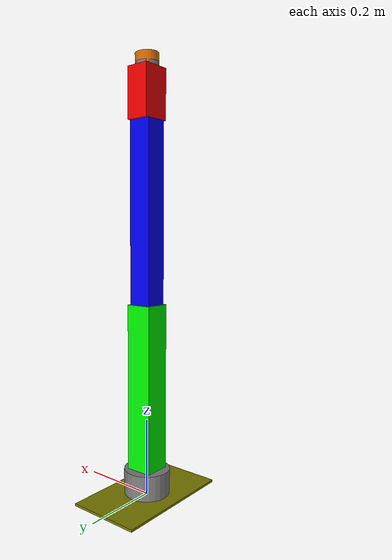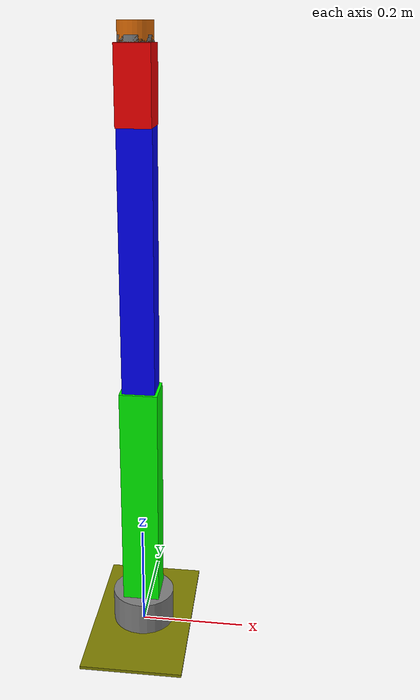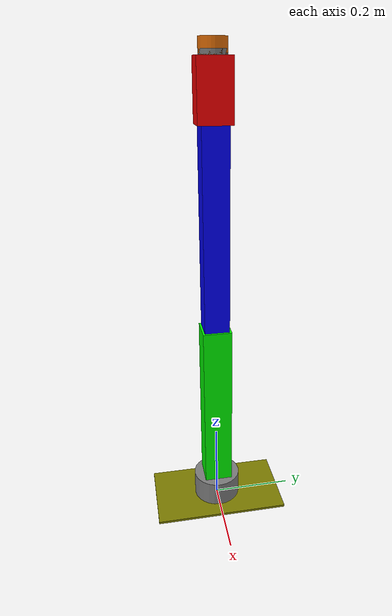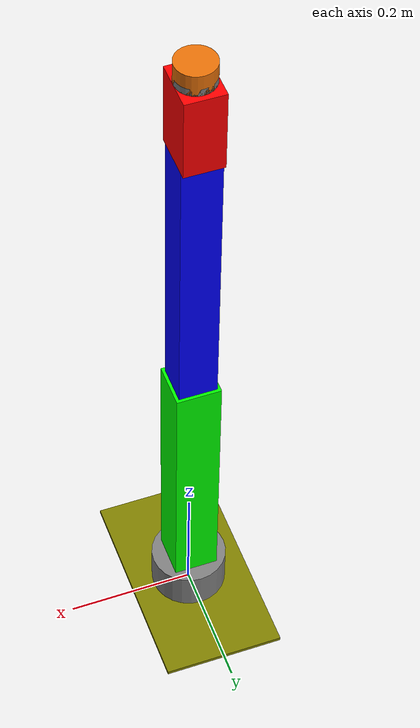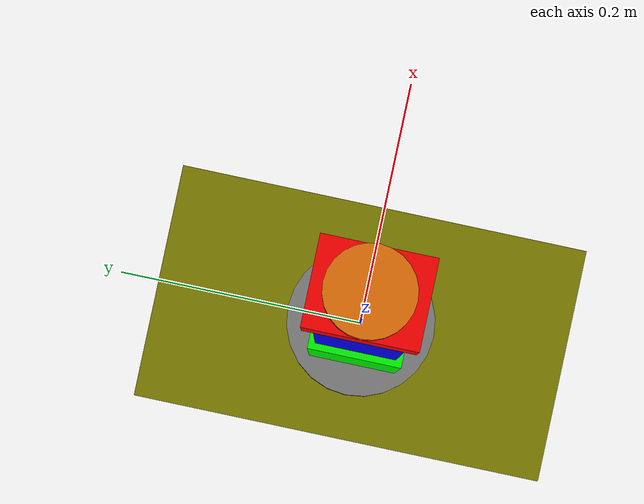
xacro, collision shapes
<?xml version="1.0" encoding="utf-8"?>
<robot xmlns:xacro="http://www.ros.org/wiki/xacro" name="manipulator">
  <xacro:property name="package" value="sirius_description" />
  <xacro:property name="base_length" value="0.006" />
  <xacro:property name="cyl_length" value="0.0655" />
  <xacro:property name="arm1_length" value="0.43498" />
  <xacro:property name="arm2_length" value="0.5236" />
  <xacro:property name="arm2_lever" value="0.0586" />
  <xacro:property name="arm3_length" value="0.129" />
  <xacro:property name="tool_length" value="0.011" />
  <xacro:property name="base_size_x" value="0.2" />
  <link name="base_link">
    <visual>
      <origin xyz="0 0 0" rpy="0 0 0" />
      <geometry>
        <mesh filename="package://${package}/meshes/manipulator/base.stl" scale="0.001 0.001 0.001"/>
      </geometry>
      <material name="yellow">
        <color rgba=".5 .5 0 1" />
      </material>
    </visual>
    <collision>
      <origin xyz="0 0 ${base_length / 2}" rpy="0 0 0" />
      <geometry>
        <box size="0.192 0.337 ${base_length}" />
      </geometry>
    </collision>
  </link>

  <link name="cylinder">
    <visual>
      <origin xyz="0 0 0" rpy="0 0 0" />
      <geometry>
        <mesh filename="package://${package}/meshes/manipulator/cyl.stl" scale="0.001 0.001 0.001"/>
      </geometry>
      <material name="grey">
        <color rgba=".5 .5 .5 1" />
      </material>
    </visual>
    <collision>
      <origin xyz="0 0 ${cyl_length/2}" rpy="0 0 0" />
      <geometry>
        <cylinder length="${cyl_length}" radius="0.06" />
      </geometry>
    </collision>
  </link>
  <joint name="base_cyl" type="continuous">
    <parent link="base_link"/>
    <child link="cylinder"/>
    <origin xyz="0 0 ${base_length}"/>
    <axis xyz="0 0 1"/>
  </joint>

  <link name="arm1">
    <visual>
      <origin xyz="0 0 0" rpy="0 0 0" />
      <geometry>
        <mesh filename="package://${package}/meshes/manipulator/arm1.stl" scale="0.001 0.001 0.001"/>
      </geometry>
      <material name="green">
        <color rgba="0 1 0 1" />
      </material>
    </visual>
    <collision>
      <origin xyz="0 0 ${arm1_length/2}" rpy="0 0 0" />
      <geometry>
        <box size="0.07 0.07 ${arm1_length}" />
      </geometry>
    </collision>
  </link>
  <joint name="cyl_arm1" type="revolute">
    <parent link="cylinder"/>
    <child link="arm1"/>
    <origin xyz="0 0 ${cyl_length}"/>
    <axis xyz="0 1 0"/>
    <limit
      lower="-1.45"
      upper="0.79"
      effort="0"
      velocity="0" />
  </joint>

  <link name="arm2">
    <visual>
      <origin xyz="0 0 0" rpy="0 0 0" />
      <geometry>
        <mesh filename="package://${package}/meshes/manipulator/arm2.stl" scale="0.001 0.001 0.001"/>
      </geometry>
      <material name="blue">
        <color rgba="0 0 1 1" />
      </material>
    </visual>
    <collision>
      <origin xyz="0 0 ${arm2_length/2 - arm2_lever}" rpy="0 0 0" />
      <geometry>
        <box size="0.06 0.06 ${arm2_length}" />
      </geometry>
    </collision>
  </link>
  <joint name="arm1_arm2" type="revolute">
    <parent link="arm1"/>
    <child link="arm2"/>
    <origin xyz="0 0 ${arm1_length}"/>
    <axis xyz="0 1 0"/>
    <limit
      lower="0.0"
      upper="2.36"
      effort="0"
      velocity="0" />
  </joint>

  <link name="arm3">
    <visual>
      <origin xyz="0 0 0" rpy="0 0 0" />
      <geometry>
        <mesh filename="package://${package}/meshes/manipulator/arm3.stl" scale="0.001 0.001 0.001"/>
      </geometry>
      <material name="red">
        <color rgba="1 0 0 1" />
      </material>
    </visual>
    <collision>
      <origin xyz="0 0 ${arm3_length/2}" rpy="0 0 0" />
      <geometry>
        <box size="0.06 0.076 ${arm3_length}" />
      </geometry>
    </collision>
  </link>
  <joint name="arm2_arm3" type="revolute">
    <parent link="arm2"/>
    <child link="arm3"/>
    <origin xyz="0 0 ${arm2_length - arm2_lever}"/>
    <axis xyz="0 1 0"/>
    <limit
      lower="-1.45"
      upper="0.79"
      effort="0"
      velocity="0" />
  </joint>

  <link name="tool">
    <visual>
      <origin xyz="0 0 0" rpy="0 0 0" />
      <geometry>
        <mesh filename="package://${package}/meshes/manipulator/tool.stl" scale="0.001 0.001 0.001"/>
      </geometry>
      <material name="grey">
      </material>
    </visual>
    <collision>
      <origin xyz="0 0 ${tool_length/2}" rpy="0 0 0" />
      <geometry>
        <cylinder length="${tool_length}" radius="0.03" />
      </geometry>
    </collision>
  </link>
  <joint name="arm3_tool" type="continuous">
    <parent link="arm3"/>
    <child link="tool"/>
    <origin xyz="0 0 ${arm3_length}"/>
    <axis xyz="0 0 1"/>
  </joint>

  <!--Chwytak jest do poprawy bo aktualnie jest jako jedna czesc przez co nie da sie go otwierac-->
  <link name="fake">
    <visual>
      <origin xyz="0 0 0" rpy="0 0 0" />
      <geometry>
        <mesh filename="package://${package}/meshes/manipulator/Sirius2_chwytak_model.STL" scale="0.001 0.001 0.001"/>
      </geometry>
      <material name="gold">
        <color rgba=".910 .443 .031 1" />
      </material>
    </visual>
    <collision>
      <origin xyz="0 0 ${tool_length/2}" rpy="0 0 0" />
      <geometry>
        <cylinder length="${tool_length*3}" radius="0.03" />
      </geometry>
    </collision>
  </link>
  <joint name="tool_fake" type="revolute">
    <parent link="tool"/>
    <child link="fake"/>
    <origin xyz="0 0 ${tool_length}"/>
    <axis xyz="0 1 0"/>
    <limit
      lower="-1.45"
      upper="0.79"
      effort="0"
      velocity="0" />
  </joint>
</robot>
